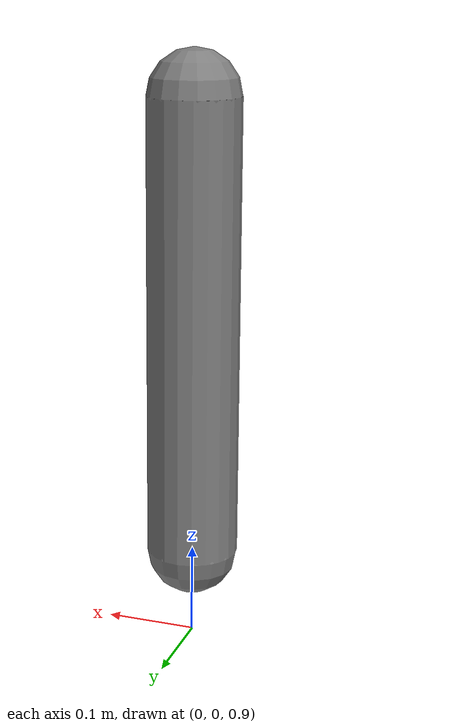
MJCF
<mujoco model="fixed-step-fixture">
  <option timestep="0.01" gravity="0 0 -9.81"/>
  <worldbody>
    <geom name="floor" type="plane" size="2 2 0.1"/>
    <body name="arm" pos="0 0 1">
      <joint name="hinge" type="hinge" axis="0 1 0"/>
      <geom name="arm_geom" type="capsule" fromto="0 0 0 0 0 0.5" size="0.05" mass="1"/>
      <site name="tip" pos="0 0 0.5" size="0.01"/>
    </body>
  </worldbody>
  <actuator>
    <motor name="hinge_motor" joint="hinge" ctrlrange="-1 1" ctrllimited="true"/>
  </actuator>
  <sensor>
    <framepos name="tip_position" objtype="site" objname="tip"/>
  </sensor>
</mujoco>
